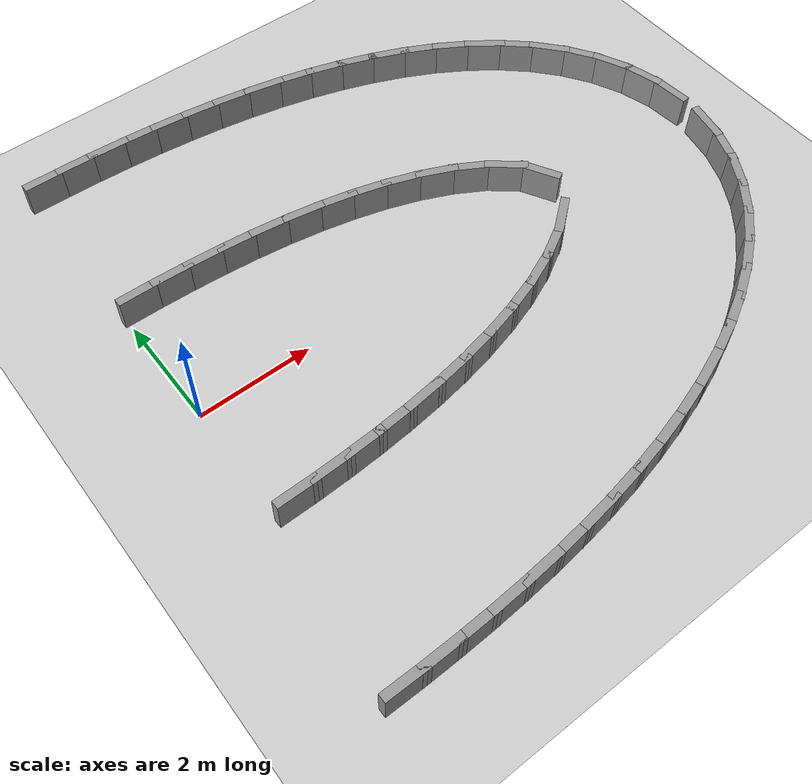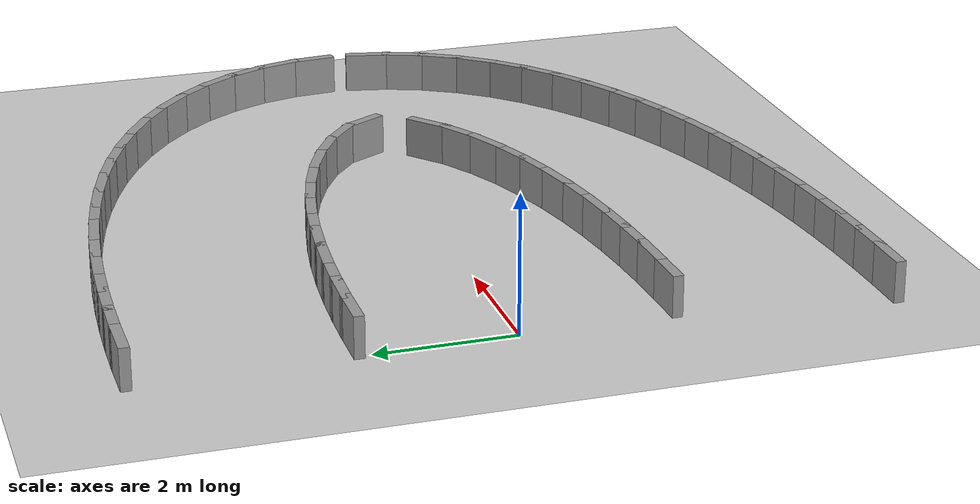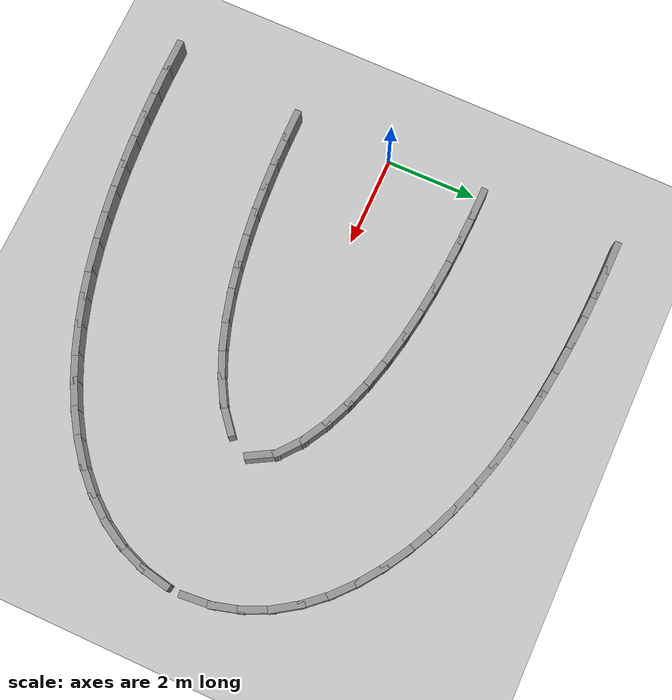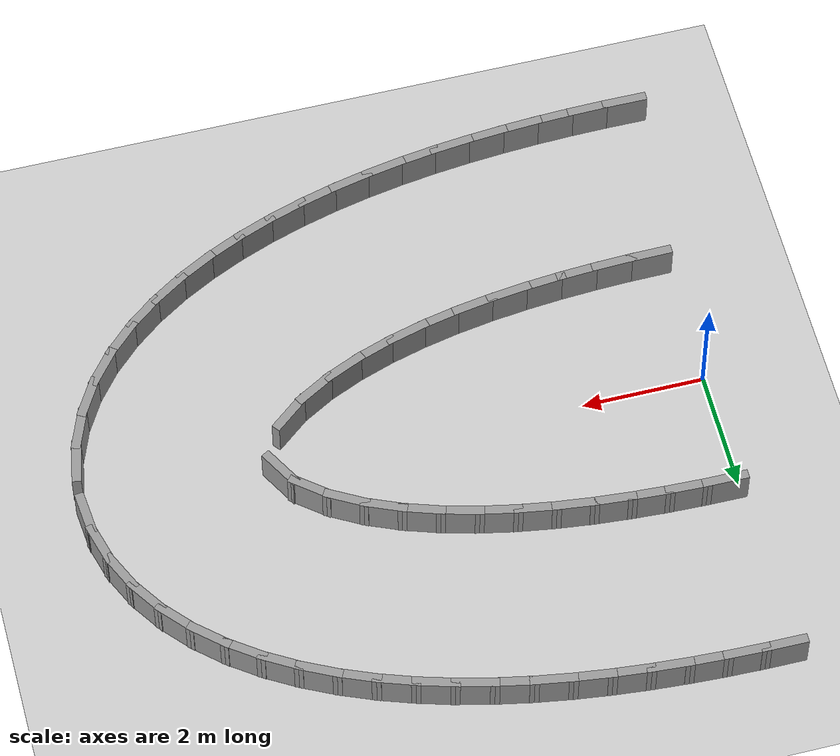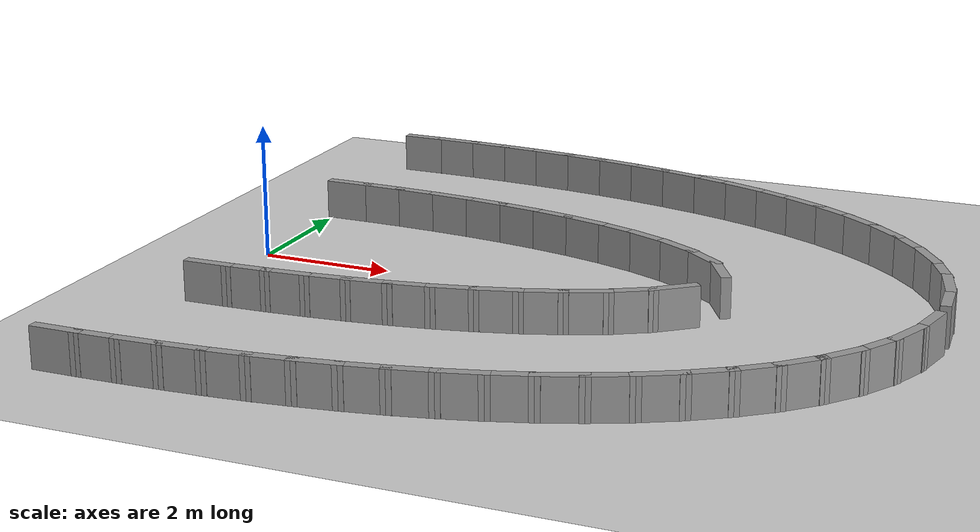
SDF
<sdf version="1.7">
 <world name="default">
  <model name="ground_plane">
   <static>1</static>
   <link name="link">
    <collision name="collision">
     <geometry><plane><normal>0 0 1</normal><size>100 100</size></plane></geometry>
     <surface><friction><ode><mu>100</mu><mu2>50</mu2></ode></friction></surface>
    </collision>
    <visual name="visual">
     <cast_shadows>0</cast_shadows>
     <geometry><plane><normal>0 0 1</normal><size>100 100</size></plane></geometry>
     <material>
      <script><uri>file://media/materials/scripts/gazebo.material</uri><name>Gazebo/Grey</name></script>
     </material>
    </visual>
   </link>
  </model>
  <model name="rand_lobed_03">
   <link name="Wall_0">
    <collision name="Wall_0_Collision">
     <geometry><box><size>0.7377 0.1500 0.6000</size></box></geometry>
     <pose>0 0 0.3000 0 -0 0</pose>
    </collision>
    <visual name="Wall_0_Visual">
     <pose>0 0 0.3000 0 -0 0</pose>
     <geometry><box><size>0.7377 0.1500 0.6000</size></box></geometry>
     <material>
      <script><uri>file://media/materials/scripts/gazebo.material</uri><name>Gazebo/Grey</name></script>
      <ambient>1 1 1 1</ambient>
     </material>
    </visual>
    <pose>6.9990 0.2561 0 0 -0 2.08328</pose>
   </link>
   <link name="Wall_1">
    <collision name="Wall_1_Collision">
     <geometry><box><size>0.7489 0.1500 0.6000</size></box></geometry>
     <pose>0 0 0.3000 0 -0 0</pose>
    </collision>
    <visual name="Wall_1_Visual">
     <pose>0 0 0.3000 0 -0 0</pose>
     <geometry><box><size>0.7489 0.1500 0.6000</size></box></geometry>
     <material>
      <script><uri>file://media/materials/scripts/gazebo.material</uri><name>Gazebo/Grey</name></script>
      <ambient>1 1 1 1</ambient>
     </material>
    </visual>
    <pose>6.6227 0.7012 0 0 -0 2.45838</pose>
   </link>
   <link name="Wall_2">
    <collision name="Wall_2_Collision">
     <geometry><box><size>0.7496 0.1500 0.6000</size></box></geometry>
     <pose>0 0 0.3000 0 -0 0</pose>
    </collision>
    <visual name="Wall_2_Visual">
     <pose>0 0 0.3000 0 -0 0</pose>
     <geometry><box><size>0.7496 0.1500 0.6000</size></box></geometry>
     <material>
      <script><uri>file://media/materials/scripts/gazebo.material</uri><name>Gazebo/Grey</name></script>
      <ambient>1 1 1 1</ambient>
     </material>
    </visual>
    <pose>6.1300 1.0386 0 0 -0 2.62367</pose>
   </link>
   <link name="Wall_3">
    <collision name="Wall_3_Collision">
     <geometry><box><size>0.7498 0.1500 0.6000</size></box></geometry>
     <pose>0 0 0.3000 0 -0 0</pose>
    </collision>
    <visual name="Wall_3_Visual">
     <pose>0 0 0.3000 0 -0 0</pose>
     <geometry><box><size>0.7498 0.1500 0.6000</size></box></geometry>
     <material>
      <script><uri>file://media/materials/scripts/gazebo.material</uri><name>Gazebo/Grey</name></script>
      <ambient>1 1 1 1</ambient>
     </material>
    </visual>
    <pose>5.5943 1.3062 0 0 -0 2.73311</pose>
   </link>
   <link name="Wall_4">
    <collision name="Wall_4_Collision">
     <geometry><box><size>0.7499 0.1500 0.6000</size></box></geometry>
     <pose>0 0 0.3000 0 -0 0</pose>
    </collision>
    <visual name="Wall_4_Visual">
     <pose>0 0 0.3000 0 -0 0</pose>
     <geometry><box><size>0.7499 0.1500 0.6000</size></box></geometry>
     <material>
      <script><uri>file://media/materials/scripts/gazebo.material</uri><name>Gazebo/Grey</name></script>
      <ambient>1 1 1 1</ambient>
     </material>
    </visual>
    <pose>5.0350 1.5214 0 0 -0 2.81528</pose>
   </link>
   <link name="Wall_5">
    <collision name="Wall_5_Collision">
     <geometry><box><size>0.7499 0.1500 0.6000</size></box></geometry>
     <pose>0 0 0.3000 0 -0 0</pose>
    </collision>
    <visual name="Wall_5_Visual">
     <pose>0 0 0.3000 0 -0 0</pose>
     <geometry><box><size>0.7499 0.1500 0.6000</size></box></geometry>
     <material>
      <script><uri>file://media/materials/scripts/gazebo.material</uri><name>Gazebo/Grey</name></script>
      <ambient>1 1 1 1</ambient>
     </material>
    </visual>
    <pose>4.4610 1.6948 0 0 -0 2.88108</pose>
   </link>
   <link name="Wall_6">
    <collision name="Wall_6_Collision">
     <geometry><box><size>0.7499 0.1500 0.6000</size></box></geometry>
     <pose>0 0 0.3000 0 -0 0</pose>
    </collision>
    <visual name="Wall_6_Visual">
     <pose>0 0 0.3000 0 -0 0</pose>
     <geometry><box><size>0.7499 0.1500 0.6000</size></box></geometry>
     <material>
      <script><uri>file://media/materials/scripts/gazebo.material</uri><name>Gazebo/Grey</name></script>
      <ambient>1 1 1 1</ambient>
     </material>
    </visual>
    <pose>3.8775 1.8334 0 0 -0 2.93567</pose>
   </link>
   <link name="Wall_7">
    <collision name="Wall_7_Collision">
     <geometry><box><size>0.7500 0.1500 0.6000</size></box></geometry>
     <pose>0 0 0.3000 0 -0 0</pose>
    </collision>
    <visual name="Wall_7_Visual">
     <pose>0 0 0.3000 0 -0 0</pose>
     <geometry><box><size>0.7500 0.1500 0.6000</size></box></geometry>
     <material>
      <script><uri>file://media/materials/scripts/gazebo.material</uri><name>Gazebo/Grey</name></script>
      <ambient>1 1 1 1</ambient>
     </material>
    </visual>
    <pose>3.2878 1.9425 0 0 -0 2.98180</pose>
   </link>
   <link name="Wall_8">
    <collision name="Wall_8_Collision">
     <geometry><box><size>0.7500 0.1500 0.6000</size></box></geometry>
     <pose>0 0 0.3000 0 -0 0</pose>
    </collision>
    <visual name="Wall_8_Visual">
     <pose>0 0 0.3000 0 -0 0</pose>
     <geometry><box><size>0.7500 0.1500 0.6000</size></box></geometry>
     <material>
      <script><uri>file://media/materials/scripts/gazebo.material</uri><name>Gazebo/Grey</name></script>
      <ambient>1 1 1 1</ambient>
     </material>
    </visual>
    <pose>2.6938 2.0263 0 0 -0 3.02109</pose>
   </link>
   <link name="Wall_9">
    <collision name="Wall_9_Collision">
     <geometry><box><size>0.7500 0.1500 0.6000</size></box></geometry>
     <pose>0 0 0.3000 0 -0 0</pose>
    </collision>
    <visual name="Wall_9_Visual">
     <pose>0 0 0.3000 0 -0 0</pose>
     <geometry><box><size>0.7500 0.1500 0.6000</size></box></geometry>
     <material>
      <script><uri>file://media/materials/scripts/gazebo.material</uri><name>Gazebo/Grey</name></script>
      <ambient>1 1 1 1</ambient>
     </material>
    </visual>
    <pose>2.0971 2.0884 0 0 -0 3.05462</pose>
   </link>
   <link name="Wall_10">
    <collision name="Wall_10_Collision">
     <geometry><box><size>0.7500 0.1500 0.6000</size></box></geometry>
     <pose>0 0 0.3000 0 -0 0</pose>
    </collision>
    <visual name="Wall_10_Visual">
     <pose>0 0 0.3000 0 -0 0</pose>
     <geometry><box><size>0.7500 0.1500 0.6000</size></box></geometry>
     <material>
      <script><uri>file://media/materials/scripts/gazebo.material</uri><name>Gazebo/Grey</name></script>
      <ambient>1 1 1 1</ambient>
     </material>
    </visual>
    <pose>1.4988 2.1319 0 0 -0 3.08334</pose>
   </link>
   <link name="Wall_11">
    <collision name="Wall_11_Collision">
     <geometry><box><size>0.7500 0.1500 0.6000</size></box></geometry>
     <pose>0 0 0.3000 0 -0 0</pose>
    </collision>
    <visual name="Wall_11_Visual">
     <pose>0 0 0.3000 0 -0 0</pose>
     <geometry><box><size>0.7500 0.1500 0.6000</size></box></geometry>
     <material>
      <script><uri>file://media/materials/scripts/gazebo.material</uri><name>Gazebo/Grey</name></script>
      <ambient>1 1 1 1</ambient>
     </material>
    </visual>
    <pose>0.8995 2.1594 0 0 -0 3.10828</pose>
   </link>
   <link name="Wall_12">
    <collision name="Wall_12_Collision">
     <geometry><box><size>0.7500 0.1500 0.6000</size></box></geometry>
     <pose>0 0 0.3000 0 -0 0</pose>
    </collision>
    <visual name="Wall_12_Visual">
     <pose>0 0 0.3000 0 -0 0</pose>
     <geometry><box><size>0.7500 0.1500 0.6000</size></box></geometry>
     <material>
      <script><uri>file://media/materials/scripts/gazebo.material</uri><name>Gazebo/Grey</name></script>
      <ambient>1 1 1 1</ambient>
     </material>
    </visual>
    <pose>0.2997 2.1726 0 0 -0 3.13078</pose>
   </link>
   <link name="Wall_39">
    <collision name="Wall_39_Collision">
     <geometry><box><size>0.7500 0.1500 0.6000</size></box></geometry>
     <pose>0 0 0.3000 0 -0 0</pose>
    </collision>
    <visual name="Wall_39_Visual">
     <pose>0 0 0.3000 0 -0 0</pose>
     <geometry><box><size>0.7500 0.1500 0.6000</size></box></geometry>
     <material>
      <script><uri>file://media/materials/scripts/gazebo.material</uri><name>Gazebo/Grey</name></script>
      <ambient>1 1 1 1</ambient>
     </material>
    </visual>
    <pose>0.3009 -2.1726 0 0 -0 0.01086</pose>
   </link>
   <link name="Wall_40">
    <collision name="Wall_40_Collision">
     <geometry><box><size>0.7500 0.1500 0.6000</size></box></geometry>
     <pose>0 0 0.3000 0 -0 0</pose>
    </collision>
    <visual name="Wall_40_Visual">
     <pose>0 0 0.3000 0 -0 0</pose>
     <geometry><box><size>0.7500 0.1500 0.6000</size></box></geometry>
     <material>
      <script><uri>file://media/materials/scripts/gazebo.material</uri><name>Gazebo/Grey</name></script>
      <ambient>1 1 1 1</ambient>
     </material>
    </visual>
    <pose>0.9007 -2.1594 0 0 -0 0.03336</pose>
   </link>
   <link name="Wall_41">
    <collision name="Wall_41_Collision">
     <geometry><box><size>0.7500 0.1500 0.6000</size></box></geometry>
     <pose>0 0 0.3000 0 -0 0</pose>
    </collision>
    <visual name="Wall_41_Visual">
     <pose>0 0 0.3000 0 -0 0</pose>
     <geometry><box><size>0.7500 0.1500 0.6000</size></box></geometry>
     <material>
      <script><uri>file://media/materials/scripts/gazebo.material</uri><name>Gazebo/Grey</name></script>
      <ambient>1 1 1 1</ambient>
     </material>
    </visual>
    <pose>1.5000 -2.1319 0 0 -0 0.05830</pose>
   </link>
   <link name="Wall_42">
    <collision name="Wall_42_Collision">
     <geometry><box><size>0.7500 0.1500 0.6000</size></box></geometry>
     <pose>0 0 0.3000 0 -0 0</pose>
    </collision>
    <visual name="Wall_42_Visual">
     <pose>0 0 0.3000 0 -0 0</pose>
     <geometry><box><size>0.7500 0.1500 0.6000</size></box></geometry>
     <material>
      <script><uri>file://media/materials/scripts/gazebo.material</uri><name>Gazebo/Grey</name></script>
      <ambient>1 1 1 1</ambient>
     </material>
    </visual>
    <pose>2.0983 -2.0883 0 0 -0 0.08703</pose>
   </link>
   <link name="Wall_43">
    <collision name="Wall_43_Collision">
     <geometry><box><size>0.7500 0.1500 0.6000</size></box></geometry>
     <pose>0 0 0.3000 0 -0 0</pose>
    </collision>
    <visual name="Wall_43_Visual">
     <pose>0 0 0.3000 0 -0 0</pose>
     <geometry><box><size>0.7500 0.1500 0.6000</size></box></geometry>
     <material>
      <script><uri>file://media/materials/scripts/gazebo.material</uri><name>Gazebo/Grey</name></script>
      <ambient>1 1 1 1</ambient>
     </material>
    </visual>
    <pose>2.6950 -2.0262 0 0 -0 0.12058</pose>
   </link>
   <link name="Wall_44">
    <collision name="Wall_44_Collision">
     <geometry><box><size>0.7500 0.1500 0.6000</size></box></geometry>
     <pose>0 0 0.3000 0 -0 0</pose>
    </collision>
    <visual name="Wall_44_Visual">
     <pose>0 0 0.3000 0 -0 0</pose>
     <geometry><box><size>0.7500 0.1500 0.6000</size></box></geometry>
     <material>
      <script><uri>file://media/materials/scripts/gazebo.material</uri><name>Gazebo/Grey</name></script>
      <ambient>1 1 1 1</ambient>
     </material>
    </visual>
    <pose>3.2889 -1.9423 0 0 -0 0.15987</pose>
   </link>
   <link name="Wall_45">
    <collision name="Wall_45_Collision">
     <geometry><box><size>0.7499 0.1500 0.6000</size></box></geometry>
     <pose>0 0 0.3000 0 -0 0</pose>
    </collision>
    <visual name="Wall_45_Visual">
     <pose>0 0 0.3000 0 -0 0</pose>
     <geometry><box><size>0.7499 0.1500 0.6000</size></box></geometry>
     <material>
      <script><uri>file://media/materials/scripts/gazebo.material</uri><name>Gazebo/Grey</name></script>
      <ambient>1 1 1 1</ambient>
     </material>
    </visual>
    <pose>3.8787 -1.8332 0 0 -0 0.20602</pose>
   </link>
   <link name="Wall_46">
    <collision name="Wall_46_Collision">
     <geometry><box><size>0.7499 0.1500 0.6000</size></box></geometry>
     <pose>0 0 0.3000 0 -0 0</pose>
    </collision>
    <visual name="Wall_46_Visual">
     <pose>0 0 0.3000 0 -0 0</pose>
     <geometry><box><size>0.7499 0.1500 0.6000</size></box></geometry>
     <material>
      <script><uri>file://media/materials/scripts/gazebo.material</uri><name>Gazebo/Grey</name></script>
      <ambient>1 1 1 1</ambient>
     </material>
    </visual>
    <pose>4.4621 -1.6945 0 0 -0 0.26063</pose>
   </link>
   <link name="Wall_47">
    <collision name="Wall_47_Collision">
     <geometry><box><size>0.7499 0.1500 0.6000</size></box></geometry>
     <pose>0 0 0.3000 0 -0 0</pose>
    </collision>
    <visual name="Wall_47_Visual">
     <pose>0 0 0.3000 0 -0 0</pose>
     <geometry><box><size>0.7499 0.1500 0.6000</size></box></geometry>
     <material>
      <script><uri>file://media/materials/scripts/gazebo.material</uri><name>Gazebo/Grey</name></script>
      <ambient>1 1 1 1</ambient>
     </material>
    </visual>
    <pose>5.0361 -1.5211 0 0 -0 0.32645</pose>
   </link>
   <link name="Wall_48">
    <collision name="Wall_48_Collision">
     <geometry><box><size>0.7498 0.1500 0.6000</size></box></geometry>
     <pose>0 0 0.3000 0 -0 0</pose>
    </collision>
    <visual name="Wall_48_Visual">
     <pose>0 0 0.3000 0 -0 0</pose>
     <geometry><box><size>0.7498 0.1500 0.6000</size></box></geometry>
     <material>
      <script><uri>file://media/materials/scripts/gazebo.material</uri><name>Gazebo/Grey</name></script>
      <ambient>1 1 1 1</ambient>
     </material>
    </visual>
    <pose>5.5953 -1.3057 0 0 -0 0.40866</pose>
   </link>
   <link name="Wall_49">
    <collision name="Wall_49_Collision">
     <geometry><box><size>0.7496 0.1500 0.6000</size></box></geometry>
     <pose>0 0 0.3000 0 -0 0</pose>
    </collision>
    <visual name="Wall_49_Visual">
     <pose>0 0 0.3000 0 -0 0</pose>
     <geometry><box><size>0.7496 0.1500 0.6000</size></box></geometry>
     <material>
      <script><uri>file://media/materials/scripts/gazebo.material</uri><name>Gazebo/Grey</name></script>
      <ambient>1 1 1 1</ambient>
     </material>
    </visual>
    <pose>6.1310 -1.0381 0 0 -0 0.51816</pose>
   </link>
   <link name="Wall_50">
    <collision name="Wall_50_Collision">
     <geometry><box><size>0.7489 0.1500 0.6000</size></box></geometry>
     <pose>0 0 0.3000 0 -0 0</pose>
    </collision>
    <visual name="Wall_50_Visual">
     <pose>0 0 0.3000 0 -0 0</pose>
     <geometry><box><size>0.7489 0.1500 0.6000</size></box></geometry>
     <material>
      <script><uri>file://media/materials/scripts/gazebo.material</uri><name>Gazebo/Grey</name></script>
      <ambient>1 1 1 1</ambient>
     </material>
    </visual>
    <pose>6.6236 -0.7004 0 0 -0 0.68364</pose>
   </link>
   <link name="Wall_51">
    <collision name="Wall_51_Collision">
     <geometry><box><size>0.7492 0.1500 0.6000</size></box></geometry>
     <pose>0 0 0.3000 0 -0 0</pose>
    </collision>
    <visual name="Wall_51_Visual">
     <pose>0 0 0.3000 0 -0 0</pose>
     <geometry><box><size>0.7492 0.1500 0.6000</size></box></geometry>
     <material>
      <script><uri>file://media/materials/scripts/gazebo.material</uri><name>Gazebo/Grey</name></script>
      <ambient>1 1 1 1</ambient>
     </material>
    </visual>
    <pose>10.1354 0.2984 0 0 -0 1.66104</pose>
   </link>
   <link name="Wall_52">
    <collision name="Wall_52_Collision">
     <geometry><box><size>0.7492 0.1500 0.6000</size></box></geometry>
     <pose>0 0 0.3000 0 -0 0</pose>
    </collision>
    <visual name="Wall_52_Visual">
     <pose>0 0 0.3000 0 -0 0</pose>
     <geometry><box><size>0.7492 0.1500 0.6000</size></box></geometry>
     <material>
      <script><uri>file://media/materials/scripts/gazebo.material</uri><name>Gazebo/Grey</name></script>
      <ambient>1 1 1 1</ambient>
     </material>
    </visual>
    <pose>10.0294 0.8858 0 0 -0 1.83783</pose>
   </link>
   <link name="Wall_53">
    <collision name="Wall_53_Collision">
     <geometry><box><size>0.7494 0.1500 0.6000</size></box></geometry>
     <pose>0 0 0.3000 0 -0 0</pose>
    </collision>
    <visual name="Wall_53_Visual">
     <pose>0 0 0.3000 0 -0 0</pose>
     <geometry><box><size>0.7494 0.1500 0.6000</size></box></geometry>
     <material>
      <script><uri>file://media/materials/scripts/gazebo.material</uri><name>Gazebo/Grey</name></script>
      <ambient>1 1 1 1</ambient>
     </material>
    </visual>
    <pose>9.8242 1.4466 0 0 -0 2.00498</pose>
   </link>
   <link name="Wall_54">
    <collision name="Wall_54_Collision">
     <geometry><box><size>0.7495 0.1500 0.6000</size></box></geometry>
     <pose>0 0 0.3000 0 -0 0</pose>
    </collision>
    <visual name="Wall_54_Visual">
     <pose>0 0 0.3000 0 -0 0</pose>
     <geometry><box><size>0.7495 0.1500 0.6000</size></box></geometry>
     <material>
      <script><uri>file://media/materials/scripts/gazebo.material</uri><name>Gazebo/Grey</name></script>
      <ambient>1 1 1 1</ambient>
     </material>
    </visual>
    <pose>9.5322 1.9681 0 0 -0 2.15755</pose>
   </link>
   <link name="Wall_55">
    <collision name="Wall_55_Collision">
     <geometry><box><size>0.7496 0.1500 0.6000</size></box></geometry>
     <pose>0 0 0.3000 0 -0 0</pose>
    </collision>
    <visual name="Wall_55_Visual">
     <pose>0 0 0.3000 0 -0 0</pose>
     <geometry><box><size>0.7496 0.1500 0.6000</size></box></geometry>
     <material>
      <script><uri>file://media/materials/scripts/gazebo.material</uri><name>Gazebo/Grey</name></script>
      <ambient>1 1 1 1</ambient>
     </material>
    </visual>
    <pose>9.1681 2.4427 0 0 -0 2.29304</pose>
   </link>
   <link name="Wall_56">
    <collision name="Wall_56_Collision">
     <geometry><box><size>0.7497 0.1500 0.6000</size></box></geometry>
     <pose>0 0 0.3000 0 -0 0</pose>
    </collision>
    <visual name="Wall_56_Visual">
     <pose>0 0 0.3000 0 -0 0</pose>
     <geometry><box><size>0.7497 0.1500 0.6000</size></box></geometry>
     <material>
      <script><uri>file://media/materials/scripts/gazebo.material</uri><name>Gazebo/Grey</name></script>
      <ambient>1 1 1 1</ambient>
     </material>
    </visual>
    <pose>8.7466 2.8677 0 0 -0 2.41105</pose>
   </link>
   <link name="Wall_57">
    <collision name="Wall_57_Collision">
     <geometry><box><size>0.7498 0.1500 0.6000</size></box></geometry>
     <pose>0 0 0.3000 0 -0 0</pose>
    </collision>
    <visual name="Wall_57_Visual">
     <pose>0 0 0.3000 0 -0 0</pose>
     <geometry><box><size>0.7498 0.1500 0.6000</size></box></geometry>
     <material>
      <script><uri>file://media/materials/scripts/gazebo.material</uri><name>Gazebo/Grey</name></script>
      <ambient>1 1 1 1</ambient>
     </material>
    </visual>
    <pose>8.2807 3.2441 0 0 -0 2.51288</pose>
   </link>
   <link name="Wall_58">
    <collision name="Wall_58_Collision">
     <geometry><box><size>0.7498 0.1500 0.6000</size></box></geometry>
     <pose>0 0 0.3000 0 -0 0</pose>
    </collision>
    <visual name="Wall_58_Visual">
     <pose>0 0 0.3000 0 -0 0</pose>
     <geometry><box><size>0.7498 0.1500 0.6000</size></box></geometry>
     <material>
      <script><uri>file://media/materials/scripts/gazebo.material</uri><name>Gazebo/Grey</name></script>
      <ambient>1 1 1 1</ambient>
     </material>
    </visual>
    <pose>7.7810 3.5749 0 0 -0 2.60069</pose>
   </link>
   <link name="Wall_59">
    <collision name="Wall_59_Collision">
     <geometry><box><size>0.7499 0.1500 0.6000</size></box></geometry>
     <pose>0 0 0.3000 0 -0 0</pose>
    </collision>
    <visual name="Wall_59_Visual">
     <pose>0 0 0.3000 0 -0 0</pose>
     <geometry><box><size>0.7499 0.1500 0.6000</size></box></geometry>
     <material>
      <script><uri>file://media/materials/scripts/gazebo.material</uri><name>Gazebo/Grey</name></script>
      <ambient>1 1 1 1</ambient>
     </material>
    </visual>
    <pose>7.2558 3.8638 0 0 -0 2.67666</pose>
   </link>
   <link name="Wall_60">
    <collision name="Wall_60_Collision">
     <geometry><box><size>0.7499 0.1500 0.6000</size></box></geometry>
     <pose>0 0 0.3000 0 -0 0</pose>
    </collision>
    <visual name="Wall_60_Visual">
     <pose>0 0 0.3000 0 -0 0</pose>
     <geometry><box><size>0.7499 0.1500 0.6000</size></box></geometry>
     <material>
      <script><uri>file://media/materials/scripts/gazebo.material</uri><name>Gazebo/Grey</name></script>
      <ambient>1 1 1 1</ambient>
     </material>
    </visual>
    <pose>6.7113 4.1147 0 0 -0 2.74295</pose>
   </link>
   <link name="Wall_61">
    <collision name="Wall_61_Collision">
     <geometry><box><size>0.7499 0.1500 0.6000</size></box></geometry>
     <pose>0 0 0.3000 0 -0 0</pose>
    </collision>
    <visual name="Wall_61_Visual">
     <pose>0 0 0.3000 0 -0 0</pose>
     <geometry><box><size>0.7499 0.1500 0.6000</size></box></geometry>
     <material>
      <script><uri>file://media/materials/scripts/gazebo.material</uri><name>Gazebo/Grey</name></script>
      <ambient>1 1 1 1</ambient>
     </material>
    </visual>
    <pose>6.1521 4.3313 0 0 -0 2.80131</pose>
   </link>
   <link name="Wall_62">
    <collision name="Wall_62_Collision">
     <geometry><box><size>0.7499 0.1500 0.6000</size></box></geometry>
     <pose>0 0 0.3000 0 -0 0</pose>
    </collision>
    <visual name="Wall_62_Visual">
     <pose>0 0 0.3000 0 -0 0</pose>
     <geometry><box><size>0.7499 0.1500 0.6000</size></box></geometry>
     <material>
      <script><uri>file://media/materials/scripts/gazebo.material</uri><name>Gazebo/Grey</name></script>
      <ambient>1 1 1 1</ambient>
     </material>
    </visual>
    <pose>5.5818 4.5167 0 0 -0 2.85311</pose>
   </link>
   <link name="Wall_63">
    <collision name="Wall_63_Collision">
     <geometry><box><size>0.7500 0.1500 0.6000</size></box></geometry>
     <pose>0 0 0.3000 0 -0 0</pose>
    </collision>
    <visual name="Wall_63_Visual">
     <pose>0 0 0.3000 0 -0 0</pose>
     <geometry><box><size>0.7500 0.1500 0.6000</size></box></geometry>
     <material>
      <script><uri>file://media/materials/scripts/gazebo.material</uri><name>Gazebo/Grey</name></script>
      <ambient>1 1 1 1</ambient>
     </material>
    </visual>
    <pose>5.0030 4.6740 0 0 -0 2.89945</pose>
   </link>
   <link name="Wall_64">
    <collision name="Wall_64_Collision">
     <geometry><box><size>0.7500 0.1500 0.6000</size></box></geometry>
     <pose>0 0 0.3000 0 -0 0</pose>
    </collision>
    <visual name="Wall_64_Visual">
     <pose>0 0 0.3000 0 -0 0</pose>
     <geometry><box><size>0.7500 0.1500 0.6000</size></box></geometry>
     <material>
      <script><uri>file://media/materials/scripts/gazebo.material</uri><name>Gazebo/Grey</name></script>
      <ambient>1 1 1 1</ambient>
     </material>
    </visual>
    <pose>4.4178 4.8057 0 0 -0 2.94097</pose>
   </link>
   <link name="Wall_65">
    <collision name="Wall_65_Collision">
     <geometry><box><size>0.7500 0.1500 0.6000</size></box></geometry>
     <pose>0 0 0.3000 0 -0 0</pose>
    </collision>
    <visual name="Wall_65_Visual">
     <pose>0 0 0.3000 0 -0 0</pose>
     <geometry><box><size>0.7500 0.1500 0.6000</size></box></geometry>
     <material>
      <script><uri>file://media/materials/scripts/gazebo.material</uri><name>Gazebo/Grey</name></script>
      <ambient>1 1 1 1</ambient>
     </material>
    </visual>
    <pose>3.8278 4.9143 0 0 -0 2.97833</pose>
   </link>
   <link name="Wall_66">
    <collision name="Wall_66_Collision">
     <geometry><box><size>0.7500 0.1500 0.6000</size></box></geometry>
     <pose>0 0 0.3000 0 -0 0</pose>
    </collision>
    <visual name="Wall_66_Visual">
     <pose>0 0 0.3000 0 -0 0</pose>
     <geometry><box><size>0.7500 0.1500 0.6000</size></box></geometry>
     <material>
      <script><uri>file://media/materials/scripts/gazebo.material</uri><name>Gazebo/Grey</name></script>
      <ambient>1 1 1 1</ambient>
     </material>
    </visual>
    <pose>3.2344 5.0018 0 0 -0 3.01185</pose>
   </link>
   <link name="Wall_67">
    <collision name="Wall_67_Collision">
     <geometry><box><size>0.7500 0.1500 0.6000</size></box></geometry>
     <pose>0 0 0.3000 0 -0 0</pose>
    </collision>
    <visual name="Wall_67_Visual">
     <pose>0 0 0.3000 0 -0 0</pose>
     <geometry><box><size>0.7500 0.1500 0.6000</size></box></geometry>
     <material>
      <script><uri>file://media/materials/scripts/gazebo.material</uri><name>Gazebo/Grey</name></script>
      <ambient>1 1 1 1</ambient>
     </material>
    </visual>
    <pose>2.6384 5.0705 0 0 -0 3.04181</pose>
   </link>
   <link name="Wall_68">
    <collision name="Wall_68_Collision">
     <geometry><box><size>0.7500 0.1500 0.6000</size></box></geometry>
     <pose>0 0 0.3000 0 -0 0</pose>
    </collision>
    <visual name="Wall_68_Visual">
     <pose>0 0 0.3000 0 -0 0</pose>
     <geometry><box><size>0.7500 0.1500 0.6000</size></box></geometry>
     <material>
      <script><uri>file://media/materials/scripts/gazebo.material</uri><name>Gazebo/Grey</name></script>
      <ambient>1 1 1 1</ambient>
     </material>
    </visual>
    <pose>2.0407 5.1223 0 0 -0 3.06851</pose>
   </link>
   <link name="Wall_69">
    <collision name="Wall_69_Collision">
     <geometry><box><size>0.7500 0.1500 0.6000</size></box></geometry>
     <pose>0 0 0.3000 0 -0 0</pose>
    </collision>
    <visual name="Wall_69_Visual">
     <pose>0 0 0.3000 0 -0 0</pose>
     <geometry><box><size>0.7500 0.1500 0.6000</size></box></geometry>
     <material>
      <script><uri>file://media/materials/scripts/gazebo.material</uri><name>Gazebo/Grey</name></script>
      <ambient>1 1 1 1</ambient>
     </material>
    </visual>
    <pose>1.4419 5.1590 0 0 -0 3.09229</pose>
   </link>
   <link name="Wall_70">
    <collision name="Wall_70_Collision">
     <geometry><box><size>0.7500 0.1500 0.6000</size></box></geometry>
     <pose>0 0 0.3000 0 -0 0</pose>
    </collision>
    <visual name="Wall_70_Visual">
     <pose>0 0 0.3000 0 -0 0</pose>
     <geometry><box><size>0.7500 0.1500 0.6000</size></box></geometry>
     <material>
      <script><uri>file://media/materials/scripts/gazebo.material</uri><name>Gazebo/Grey</name></script>
      <ambient>1 1 1 1</ambient>
     </material>
    </visual>
    <pose>0.8424 5.1821 0 0 -0 3.11376</pose>
   </link>
   <link name="Wall_71">
    <collision name="Wall_71_Collision">
     <geometry><box><size>0.7500 0.1500 0.6000</size></box></geometry>
     <pose>0 0 0.3000 0 -0 0</pose>
    </collision>
    <visual name="Wall_71_Visual">
     <pose>0 0 0.3000 0 -0 0</pose>
     <geometry><box><size>0.7500 0.1500 0.6000</size></box></geometry>
     <material>
      <script><uri>file://media/materials/scripts/gazebo.material</uri><name>Gazebo/Grey</name></script>
      <ambient>1 1 1 1</ambient>
     </material>
    </visual>
    <pose>0.2425 5.1928 0 0 -0 3.13372</pose>
   </link>
   <link name="Wall_113">
    <collision name="Wall_113_Collision">
     <geometry><box><size>0.7500 0.1500 0.6000</size></box></geometry>
     <pose>0 0 0.3000 0 -0 0</pose>
    </collision>
    <visual name="Wall_113_Visual">
     <pose>0 0 0.3000 0 -0 0</pose>
     <geometry><box><size>0.7500 0.1500 0.6000</size></box></geometry>
     <material>
      <script><uri>file://media/materials/scripts/gazebo.material</uri><name>Gazebo/Grey</name></script>
      <ambient>1 1 1 1</ambient>
     </material>
    </visual>
    <pose>-0.1276 -5.1935 0 0 -0 -0.00414</pose>
   </link>
   <link name="Wall_114">
    <collision name="Wall_114_Collision">
     <geometry><box><size>0.7500 0.1500 0.6000</size></box></geometry>
     <pose>0 0 0.3000 0 -0 0</pose>
    </collision>
    <visual name="Wall_114_Visual">
     <pose>0 0 0.3000 0 -0 0</pose>
     <geometry><box><size>0.7500 0.1500 0.6000</size></box></geometry>
     <material>
      <script><uri>file://media/materials/scripts/gazebo.material</uri><name>Gazebo/Grey</name></script>
      <ambient>1 1 1 1</ambient>
     </material>
    </visual>
    <pose>0.4724 -5.1902 0 0 -0 0.01541</pose>
   </link>
   <link name="Wall_115">
    <collision name="Wall_115_Collision">
     <geometry><box><size>0.7500 0.1500 0.6000</size></box></geometry>
     <pose>0 0 0.3000 0 -0 0</pose>
    </collision>
    <visual name="Wall_115_Visual">
     <pose>0 0 0.3000 0 -0 0</pose>
     <geometry><box><size>0.7500 0.1500 0.6000</size></box></geometry>
     <material>
      <script><uri>file://media/materials/scripts/gazebo.material</uri><name>Gazebo/Grey</name></script>
      <ambient>1 1 1 1</ambient>
     </material>
    </visual>
    <pose>1.0721 -5.1748 0 0 -0 0.03583</pose>
   </link>
   <link name="Wall_116">
    <collision name="Wall_116_Collision">
     <geometry><box><size>0.7500 0.1500 0.6000</size></box></geometry>
     <pose>0 0 0.3000 0 -0 0</pose>
    </collision>
    <visual name="Wall_116_Visual">
     <pose>0 0 0.3000 0 -0 0</pose>
     <geometry><box><size>0.7500 0.1500 0.6000</size></box></geometry>
     <material>
      <script><uri>file://media/materials/scripts/gazebo.material</uri><name>Gazebo/Grey</name></script>
      <ambient>1 1 1 1</ambient>
     </material>
    </visual>
    <pose>1.6714 -5.1466 0 0 -0 0.05810</pose>
   </link>
   <link name="Wall_117">
    <collision name="Wall_117_Collision">
     <geometry><box><size>0.7500 0.1500 0.6000</size></box></geometry>
     <pose>0 0 0.3000 0 -0 0</pose>
    </collision>
    <visual name="Wall_117_Visual">
     <pose>0 0 0.3000 0 -0 0</pose>
     <geometry><box><size>0.7500 0.1500 0.6000</size></box></geometry>
     <material>
      <script><uri>file://media/materials/scripts/gazebo.material</uri><name>Gazebo/Grey</name></script>
      <ambient>1 1 1 1</ambient>
     </material>
    </visual>
    <pose>2.2699 -5.1043 0 0 -0 0.08295</pose>
   </link>
   <link name="Wall_118">
    <collision name="Wall_118_Collision">
     <geometry><box><size>0.7500 0.1500 0.6000</size></box></geometry>
     <pose>0 0 0.3000 0 -0 0</pose>
    </collision>
    <visual name="Wall_118_Visual">
     <pose>0 0 0.3000 0 -0 0</pose>
     <geometry><box><size>0.7500 0.1500 0.6000</size></box></geometry>
     <material>
      <script><uri>file://media/materials/scripts/gazebo.material</uri><name>Gazebo/Grey</name></script>
      <ambient>1 1 1 1</ambient>
     </material>
    </visual>
    <pose>2.8670 -5.0463 0 0 -0 0.11086</pose>
   </link>
   <link name="Wall_119">
    <collision name="Wall_119_Collision">
     <geometry><box><size>0.7500 0.1500 0.6000</size></box></geometry>
     <pose>0 0 0.3000 0 -0 0</pose>
    </collision>
    <visual name="Wall_119_Visual">
     <pose>0 0 0.3000 0 -0 0</pose>
     <geometry><box><size>0.7500 0.1500 0.6000</size></box></geometry>
     <material>
      <script><uri>file://media/materials/scripts/gazebo.material</uri><name>Gazebo/Grey</name></script>
      <ambient>1 1 1 1</ambient>
     </material>
    </visual>
    <pose>3.4621 -4.9706 0 0 -0 0.14216</pose>
   </link>
   <link name="Wall_120">
    <collision name="Wall_120_Collision">
     <geometry><box><size>0.7500 0.1500 0.6000</size></box></geometry>
     <pose>0 0 0.3000 0 -0 0</pose>
    </collision>
    <visual name="Wall_120_Visual">
     <pose>0 0 0.3000 0 -0 0</pose>
     <geometry><box><size>0.7500 0.1500 0.6000</size></box></geometry>
     <material>
      <script><uri>file://media/materials/scripts/gazebo.material</uri><name>Gazebo/Grey</name></script>
      <ambient>1 1 1 1</ambient>
     </material>
    </visual>
    <pose>4.0543 -4.8753 0 0 -0 0.17710</pose>
   </link>
   <link name="Wall_121">
    <collision name="Wall_121_Collision">
     <geometry><box><size>0.7500 0.1500 0.6000</size></box></geometry>
     <pose>0 0 0.3000 0 -0 0</pose>
    </collision>
    <visual name="Wall_121_Visual">
     <pose>0 0 0.3000 0 -0 0</pose>
     <geometry><box><size>0.7500 0.1500 0.6000</size></box></geometry>
     <material>
      <script><uri>file://media/materials/scripts/gazebo.material</uri><name>Gazebo/Grey</name></script>
      <ambient>1 1 1 1</ambient>
     </material>
    </visual>
    <pose>4.6426 -4.7581 0 0 -0 0.21599</pose>
   </link>
   <link name="Wall_122">
    <collision name="Wall_122_Collision">
     <geometry><box><size>0.7499 0.1500 0.6000</size></box></geometry>
     <pose>0 0 0.3000 0 -0 0</pose>
    </collision>
    <visual name="Wall_122_Visual">
     <pose>0 0 0.3000 0 -0 0</pose>
     <geometry><box><size>0.7499 0.1500 0.6000</size></box></geometry>
     <material>
      <script><uri>file://media/materials/scripts/gazebo.material</uri><name>Gazebo/Grey</name></script>
      <ambient>1 1 1 1</ambient>
     </material>
    </visual>
    <pose>5.2256 -4.6169 0 0 -0 0.25932</pose>
   </link>
   <link name="Wall_123">
    <collision name="Wall_123_Collision">
     <geometry><box><size>0.7499 0.1500 0.6000</size></box></geometry>
     <pose>0 0 0.3000 0 -0 0</pose>
    </collision>
    <visual name="Wall_123_Visual">
     <pose>0 0 0.3000 0 -0 0</pose>
     <geometry><box><size>0.7499 0.1500 0.6000</size></box></geometry>
     <material>
      <script><uri>file://media/materials/scripts/gazebo.material</uri><name>Gazebo/Grey</name></script>
      <ambient>1 1 1 1</ambient>
     </material>
    </visual>
    <pose>5.8014 -4.4492 0 0 -0 0.30761</pose>
   </link>
   <link name="Wall_124">
    <collision name="Wall_124_Collision">
     <geometry><box><size>0.7499 0.1500 0.6000</size></box></geometry>
     <pose>0 0 0.3000 0 -0 0</pose>
    </collision>
    <visual name="Wall_124_Visual">
     <pose>0 0 0.3000 0 -0 0</pose>
     <geometry><box><size>0.7499 0.1500 0.6000</size></box></geometry>
     <material>
      <script><uri>file://media/materials/scripts/gazebo.material</uri><name>Gazebo/Grey</name></script>
      <ambient>1 1 1 1</ambient>
     </material>
    </visual>
    <pose>6.3678 -4.2522 0 0 -0 0.36179</pose>
   </link>
   <link name="Wall_125">
    <collision name="Wall_125_Collision">
     <geometry><box><size>0.7499 0.1500 0.6000</size></box></geometry>
     <pose>0 0 0.3000 0 -0 0</pose>
    </collision>
    <visual name="Wall_125_Visual">
     <pose>0 0 0.3000 0 -0 0</pose>
     <geometry><box><size>0.7499 0.1500 0.6000</size></box></geometry>
     <material>
      <script><uri>file://media/materials/scripts/gazebo.material</uri><name>Gazebo/Grey</name></script>
      <ambient>1 1 1 1</ambient>
     </material>
    </visual>
    <pose>6.9219 -4.0229 0 0 -0 0.42301</pose>
   </link>
   <link name="Wall_126">
    <collision name="Wall_126_Collision">
     <geometry><box><size>0.7499 0.1500 0.6000</size></box></geometry>
     <pose>0 0 0.3000 0 -0 0</pose>
    </collision>
    <visual name="Wall_126_Visual">
     <pose>0 0 0.3000 0 -0 0</pose>
     <geometry><box><size>0.7499 0.1500 0.6000</size></box></geometry>
     <material>
      <script><uri>file://media/materials/scripts/gazebo.material</uri><name>Gazebo/Grey</name></script>
      <ambient>1 1 1 1</ambient>
     </material>
    </visual>
    <pose>7.4596 -3.7579 0 0 -0 0.49278</pose>
   </link>
   <link name="Wall_127">
    <collision name="Wall_127_Collision">
     <geometry><box><size>0.7498 0.1500 0.6000</size></box></geometry>
     <pose>0 0 0.3000 0 -0 0</pose>
    </collision>
    <visual name="Wall_127_Visual">
     <pose>0 0 0.3000 0 -0 0</pose>
     <geometry><box><size>0.7498 0.1500 0.6000</size></box></geometry>
     <material>
      <script><uri>file://media/materials/scripts/gazebo.material</uri><name>Gazebo/Grey</name></script>
      <ambient>1 1 1 1</ambient>
     </material>
    </visual>
    <pose>7.9759 -3.4534 0 0 -0 0.57305</pose>
   </link>
   <link name="Wall_128">
    <collision name="Wall_128_Collision">
     <geometry><box><size>0.7497 0.1500 0.6000</size></box></geometry>
     <pose>0 0 0.3000 0 -0 0</pose>
    </collision>
    <visual name="Wall_128_Visual">
     <pose>0 0 0.3000 0 -0 0</pose>
     <geometry><box><size>0.7497 0.1500 0.6000</size></box></geometry>
     <material>
      <script><uri>file://media/materials/scripts/gazebo.material</uri><name>Gazebo/Grey</name></script>
      <ambient>1 1 1 1</ambient>
     </material>
    </visual>
    <pose>8.4637 -3.1055 0 0 -0 0.66593</pose>
   </link>
   <link name="Wall_129">
    <collision name="Wall_129_Collision">
     <geometry><box><size>0.7497 0.1500 0.6000</size></box></geometry>
     <pose>0 0 0.3000 0 -0 0</pose>
    </collision>
    <visual name="Wall_129_Visual">
     <pose>0 0 0.3000 0 -0 0</pose>
     <geometry><box><size>0.7497 0.1500 0.6000</size></box></geometry>
     <material>
      <script><uri>file://media/materials/scripts/gazebo.material</uri><name>Gazebo/Grey</name></script>
      <ambient>1 1 1 1</ambient>
     </material>
    </visual>
    <pose>8.9140 -2.7107 0 0 -0 0.77373</pose>
   </link>
   <link name="Wall_130">
    <collision name="Wall_130_Collision">
     <geometry><box><size>0.7496 0.1500 0.6000</size></box></geometry>
     <pose>0 0 0.3000 0 -0 0</pose>
    </collision>
    <visual name="Wall_130_Visual">
     <pose>0 0 0.3000 0 -0 0</pose>
     <geometry><box><size>0.7496 0.1500 0.6000</size></box></geometry>
     <material>
      <script><uri>file://media/materials/scripts/gazebo.material</uri><name>Gazebo/Grey</name></script>
      <ambient>1 1 1 1</ambient>
     </material>
    </visual>
    <pose>9.3152 -2.2667 0 0 -0 0.89837</pose>
   </link>
   <link name="Wall_131">
    <collision name="Wall_131_Collision">
     <geometry><box><size>0.7494 0.1500 0.6000</size></box></geometry>
     <pose>0 0 0.3000 0 -0 0</pose>
    </collision>
    <visual name="Wall_131_Visual">
     <pose>0 0 0.3000 0 -0 0</pose>
     <geometry><box><size>0.7494 0.1500 0.6000</size></box></geometry>
     <material>
      <script><uri>file://media/materials/scripts/gazebo.material</uri><name>Gazebo/Grey</name></script>
      <ambient>1 1 1 1</ambient>
     </material>
    </visual>
    <pose>9.6534 -1.7736 0 0 -0 1.04058</pose>
   </link>
   <link name="Wall_132">
    <collision name="Wall_132_Collision">
     <geometry><box><size>0.7493 0.1500 0.6000</size></box></geometry>
     <pose>0 0 0.3000 0 -0 0</pose>
    </collision>
    <visual name="Wall_132_Visual">
     <pose>0 0 0.3000 0 -0 0</pose>
     <geometry><box><size>0.7493 0.1500 0.6000</size></box></geometry>
     <material>
      <script><uri>file://media/materials/scripts/gazebo.material</uri><name>Gazebo/Grey</name></script>
      <ambient>1 1 1 1</ambient>
     </material>
    </visual>
    <pose>9.9138 -1.2358 0 0 -0 1.19913</pose>
   </link>
   <link name="Wall_133">
    <collision name="Wall_133_Collision">
     <geometry><box><size>0.7492 0.1500 0.6000</size></box></geometry>
     <pose>0 0 0.3000 0 -0 0</pose>
    </collision>
    <visual name="Wall_133_Visual">
     <pose>0 0 0.3000 0 -0 0</pose>
     <geometry><box><size>0.7492 0.1500 0.6000</size></box></geometry>
     <material>
      <script><uri>file://media/materials/scripts/gazebo.material</uri><name>Gazebo/Grey</name></script>
      <ambient>1 1 1 1</ambient>
     </material>
    </visual>
    <pose>10.0822 -0.6630 0 0 -0 1.37072</pose>
   </link>
   <static>1</static>
  </model>
 </world>
</sdf>
